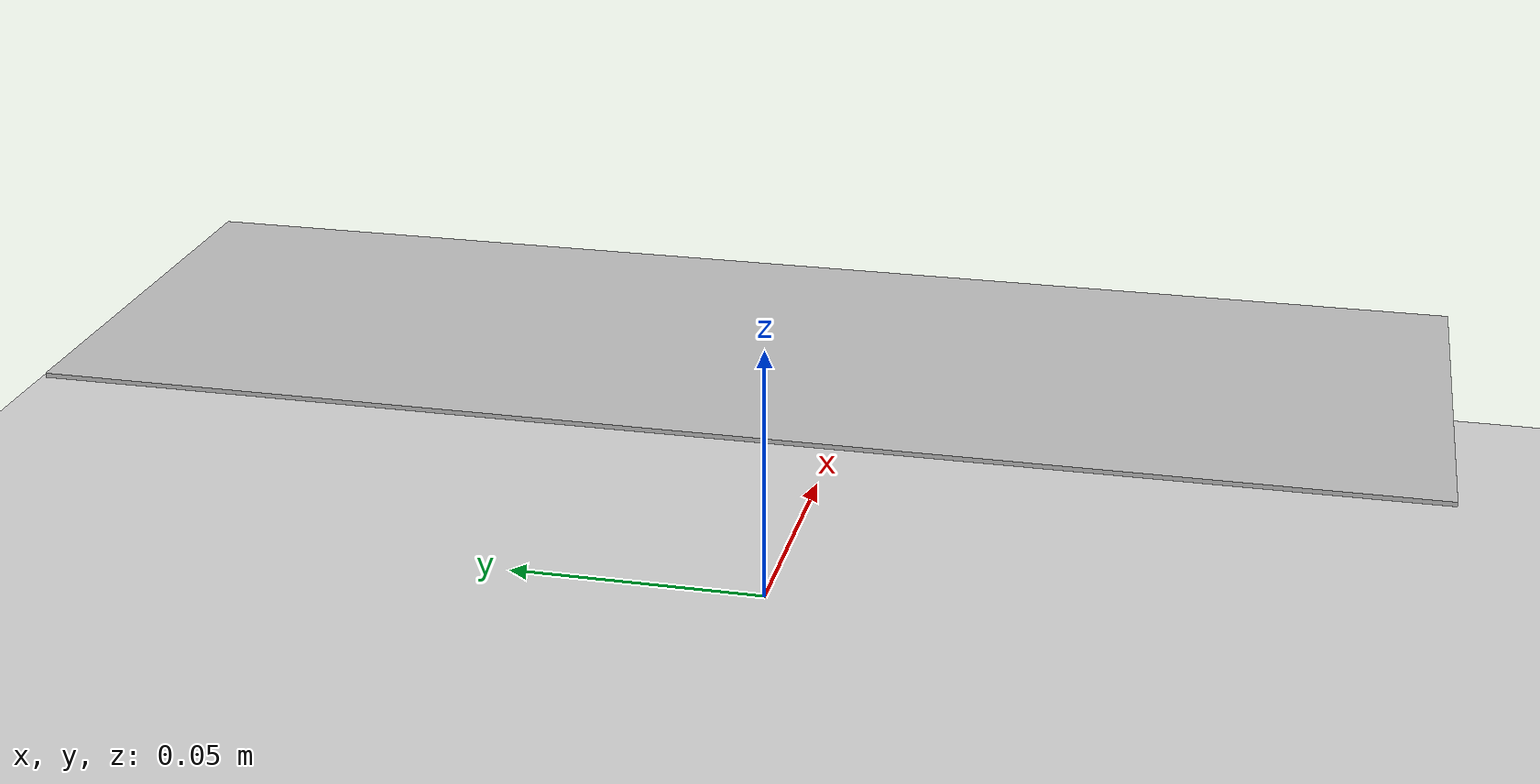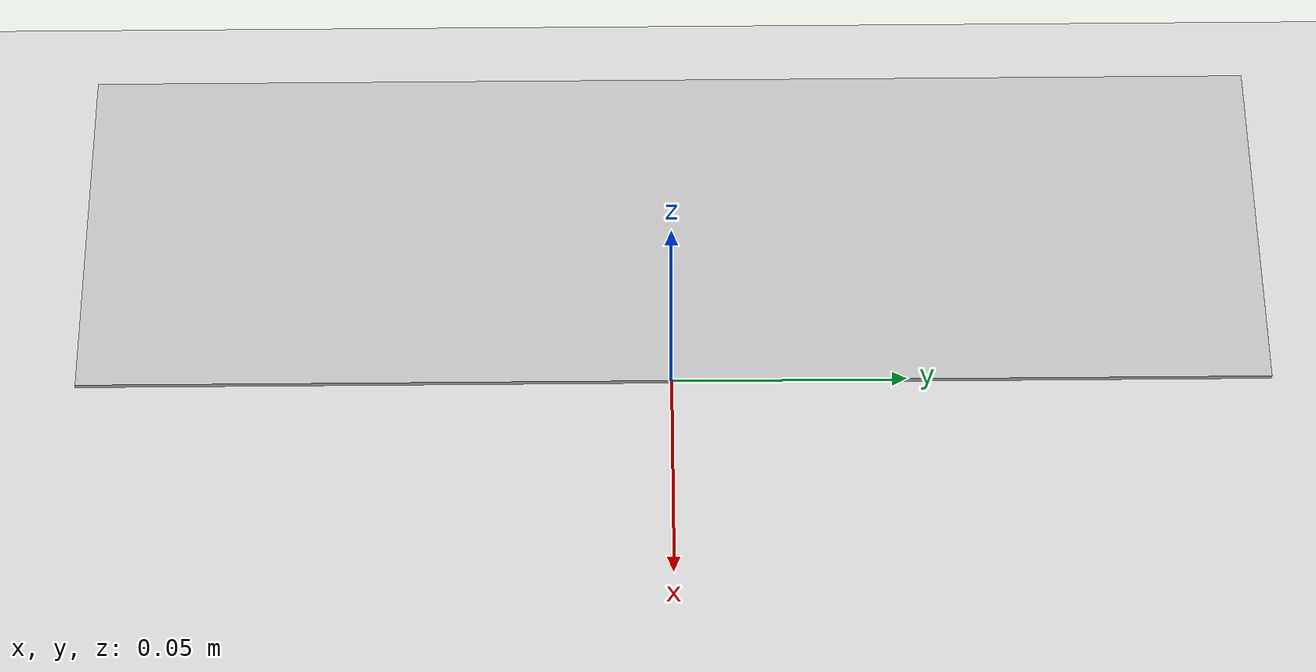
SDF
<?xml version="1.0"?>
<sdf version="1.6">
  <world name="default">
    <include>
      <uri>model://ground_plane</uri>
    </include>

    <include>
      <uri>model://sun</uri>
    </include>

    <include>
      <uri>model://smallnumber1</uri>
      <pose>0 0 0.051 0 0 0</pose>
    </include>

    <gui>
      <plugin name="sample" filename="libregenerate_widget.so"/>
    </gui>

    <plugin name="maze" filename="libmaze_plugin.so"/>

		<physics type="ode">
			<!--go as fast as possible!-->
      <real_time_update_rate>0.0</real_time_update_rate>
    </physics>
  </world>
</sdf>

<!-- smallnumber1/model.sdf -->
<sdf version="1.6">
  <model name="smallnumber1">
    <pose>0 0 0.001 0 0 0</pose>
    <static>true</static>
    <link name="link">
      <visual name="visual">
        <geometry>
          <mesh>
            <uri>model://number1/meshes/number.dae</uri>
            <scale>0.1 0.3 0.001</scale>
          </mesh>
        </geometry>
        <material>
          <script>
            <uri>model://number1/materials/scripts</uri>
            <uri>model://number1/materials/textures</uri>
            <name>Number/One</name>
          </script>
        </material>
      </visual>
    </link>
  </model>
</sdf>
